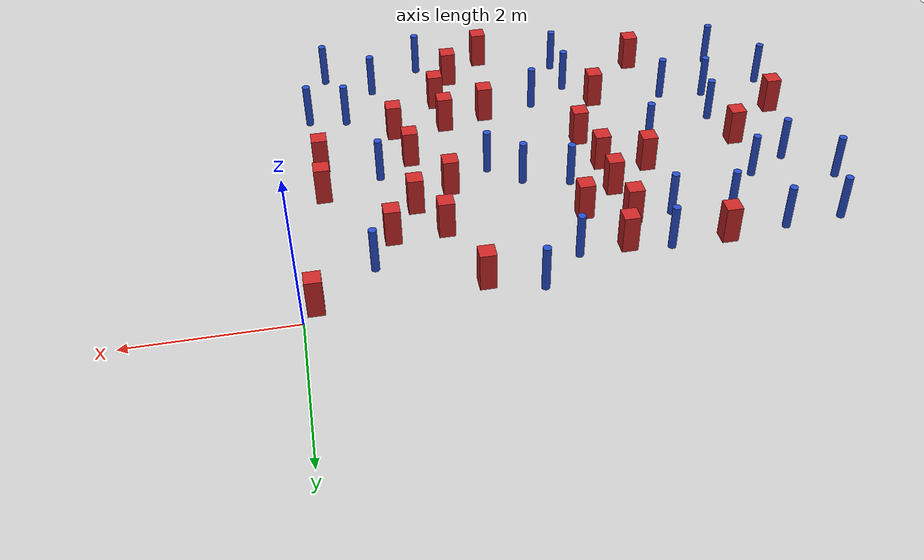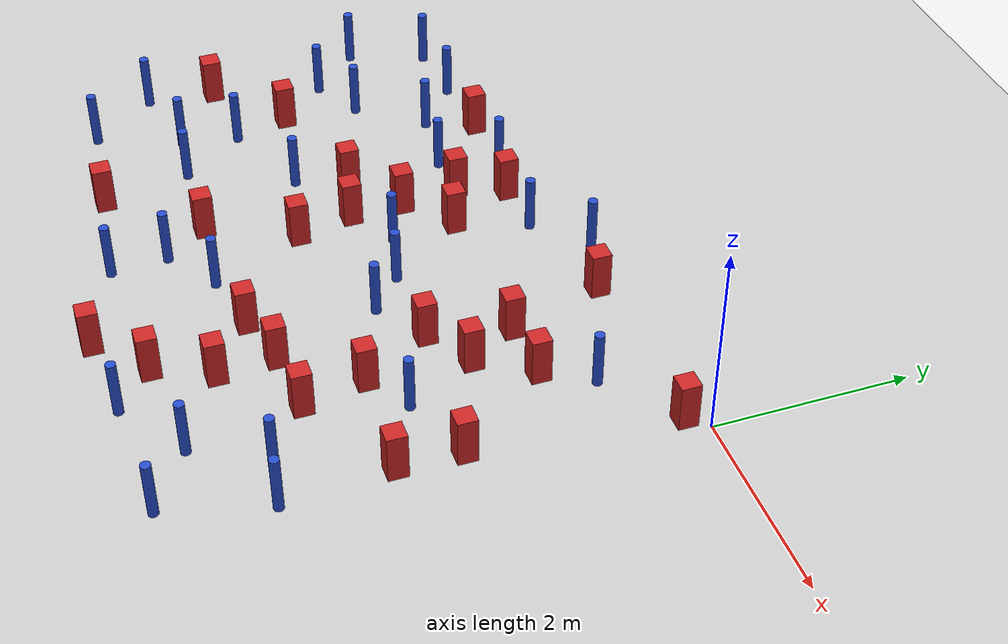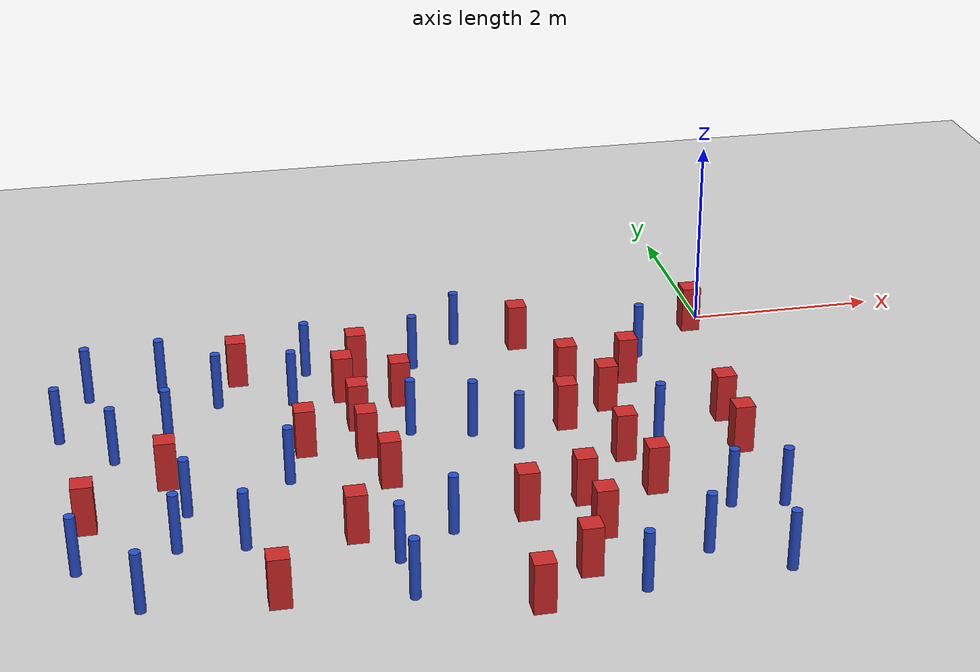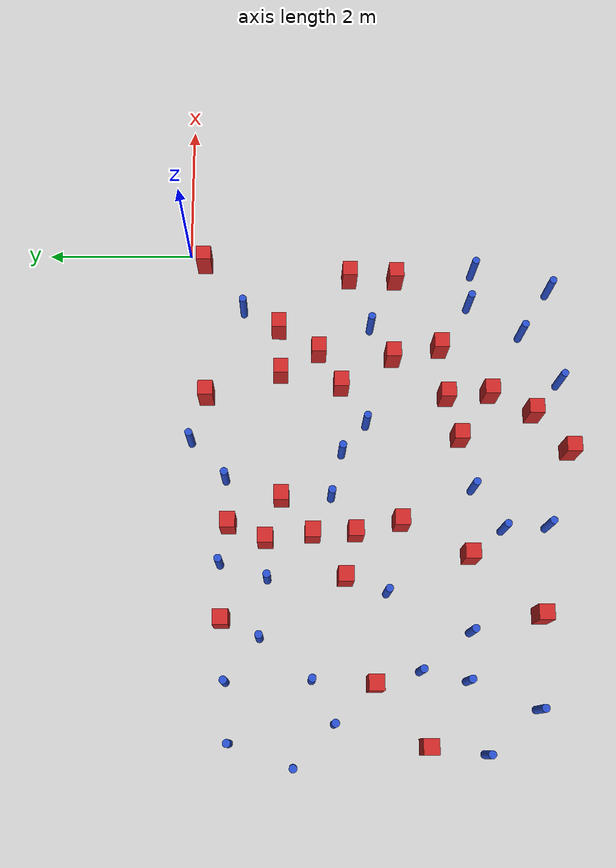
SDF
<sdf version="1.6">
 <world name="default">
  <model name="ground_plane">
   <static>1</static>
   <link name="link">
    <collision name="collision">
     <geometry><plane><normal>0 0 1</normal><size>100 100</size></plane></geometry>
     <surface><friction><ode><mu>100</mu><mu2>50</mu2></ode></friction></surface>
    </collision>
    <visual name="visual">
     <cast_shadows>0</cast_shadows>
     <geometry><plane><normal>0 0 1</normal><size>100 100</size></plane></geometry>
     <material>
      <ambient>1.0 1.0 1.0 1.0</ambient>
      <diffuse>0.8 0.8 0.8 1.0</diffuse>
      <specular>0.01 0.01 0.01 1.000000</specular>
     </material>
    </visual>
   </link>
  </model>
  <model name="pole_obstacle10">
   <static>true</static>
   <pose>-2.93135055371 -2.09699757997 -9.47619616065e-06 5.49618799737e-07 2.36310414051e-07 -1.55090534807e-07</pose>
   <link name="link">
    <pose>0 0 0.3 0 -0 0</pose>
    <inertial>
     <mass>1</mass>
     <inertia><ixx>0.145833</ixx><ixy>0</ixy><ixz>0</ixz><iyy>0.145833</iyy><iyz>0</iyz><izz>0.125</izz></inertia>
    </inertial>
    <collision name="collision">
     <geometry><cylinder><radius>0.05</radius><length>.6</length></cylinder></geometry>
    </collision>
    <visual name="visual">
     <geometry><cylinder><radius>0.05</radius><length>.6</length></cylinder></geometry>
     <material>
      <script><name>Gazebo/Blue</name><uri>file://media/materials/scripts/gazebo.material</uri></script>
     </material>
    </visual>
   </link>
  </model>
  <model name="pole_obstacle21">
   <static>true</static>
   <pose>-3.42657571255 -3.81951751165 -9.47619616065e-06 5.49618799737e-07 2.36310414051e-07 -1.55090534807e-07</pose>
   <link name="link">
    <pose>0 0 0.3 0 -0 0</pose>
    <inertial>
     <mass>1</mass>
     <inertia><ixx>0.145833</ixx><ixy>0</ixy><ixz>0</ixz><iyy>0.145833</iyy><iyz>0</iyz><izz>0.125</izz></inertia>
    </inertial>
    <collision name="collision">
     <geometry><cylinder><radius>0.05</radius><length>.6</length></cylinder></geometry>
    </collision>
    <visual name="visual">
     <geometry><cylinder><radius>0.05</radius><length>.6</length></cylinder></geometry>
     <material>
      <script><name>Gazebo/Blue</name><uri>file://media/materials/scripts/gazebo.material</uri></script>
     </material>
    </visual>
   </link>
  </model>
  <model name="pole_obstacle36">
   <static>true</static>
   <pose>-6.79070458601 -3.83877196716 -9.47619616065e-06 5.49618799738e-07 2.36310414051e-07 -1.55090534805e-07</pose>
   <link name="link">
    <pose>0 0 0.3 0 -0 0</pose>
    <inertial>
     <mass>1</mass>
     <inertia><ixx>0.145833</ixx><ixy>0</ixy><ixz>0</ixz><iyy>0.145833</iyy><iyz>0</iyz><izz>0.125</izz></inertia>
    </inertial>
    <collision name="collision">
     <geometry><cylinder><radius>0.05</radius><length>.6</length></cylinder></geometry>
    </collision>
    <visual name="visual">
     <geometry><cylinder><radius>0.05</radius><length>.6</length></cylinder></geometry>
     <material>
      <script><name>Gazebo/Blue</name><uri>file://media/materials/scripts/gazebo.material</uri></script>
     </material>
    </visual>
   </link>
  </model>
  <model name="pole_obstacle39">
   <static>true</static>
   <pose>-5.29463744672 -3.71350308579 -9.47619616065e-06 5.49618799738e-07 2.36310414051e-07 -1.55090534805e-07</pose>
   <link name="link">
    <pose>0 0 0.3 0 -0 0</pose>
    <inertial>
     <mass>1</mass>
     <inertia><ixx>0.145833</ixx><ixy>0</ixy><ixz>0</ixz><iyy>0.145833</iyy><iyz>0</iyz><izz>0.125</izz></inertia>
    </inertial>
    <collision name="collision">
     <geometry><cylinder><radius>0.05</radius><length>.6</length></cylinder></geometry>
    </collision>
    <visual name="visual">
     <geometry><cylinder><radius>0.05</radius><length>.6</length></cylinder></geometry>
     <material>
      <script><name>Gazebo/Blue</name><uri>file://media/materials/scripts/gazebo.material</uri></script>
     </material>
    </visual>
   </link>
  </model>
  <model name="pole_obstacle52">
   <static>true</static>
   <pose>-5.89471020317 -1.68037751647 -9.47619616065e-06 5.49618799738e-07 2.36310414071e-07 -1.55090534796e-07</pose>
   <link name="link">
    <pose>0 0 0.3 0 -0 0</pose>
    <inertial>
     <mass>1</mass>
     <inertia><ixx>0.145833</ixx><ixy>0</ixy><ixz>0</ixz><iyy>0.145833</iyy><iyz>0</iyz><izz>0.125</izz></inertia>
    </inertial>
    <collision name="collision">
     <geometry><cylinder><radius>0.05</radius><length>.6</length></cylinder></geometry>
    </collision>
    <visual name="visual">
     <geometry><cylinder><radius>0.05</radius><length>.6</length></cylinder></geometry>
     <material>
      <script><name>Gazebo/Blue</name><uri>file://media/materials/scripts/gazebo.material</uri></script>
     </material>
    </visual>
   </link>
  </model>
  <model name="pole_obstacle53">
   <static>true</static>
   <pose>-6.42718839206 -1.96060365254 -9.47619616065e-06 5.49618799738e-07 2.36310414079e-07 -1.55090534789e-07</pose>
   <link name="link">
    <pose>0 0 0.3 0 -0 0</pose>
    <inertial>
     <mass>1</mass>
     <inertia><ixx>0.145833</ixx><ixy>0</ixy><ixz>0</ixz><iyy>0.145833</iyy><iyz>0</iyz><izz>0.125</izz></inertia>
    </inertial>
    <collision name="collision">
     <geometry><cylinder><radius>0.05</radius><length>.6</length></cylinder></geometry>
    </collision>
    <visual name="visual">
     <geometry><cylinder><radius>0.05</radius><length>.6</length></cylinder></geometry>
     <material>
      <script><name>Gazebo/Blue</name><uri>file://media/materials/scripts/gazebo.material</uri></script>
     </material>
    </visual>
   </link>
  </model>
  <model name="square_post_obstacle44">
   <static>true</static>
   <pose>-2.13892299617 -3.5223309043 -6.11067671241e-07 -5.50515727128e-06 -8.79689657224e-07 2.37013304536e-05</pose>
   <link name="link">
    <pose>0 0 0.25 0 -0 0</pose>
    <inertial>
     <mass>100</mass>
     <inertia>
      <ixx>0.166667</ixx>
      <ixy>0</ixy>
      <ixz>0</ixz>
      <iyy>0.166667</iyy>
      <iyz>0</iyz>
      <izz>0.166667</izz>
     </inertia>
    </inertial>
    <collision name="collision"><geometry><box><size>.2 .2 .5</size></box></geometry></collision>
    <visual name="visual">
     <geometry><box><size>.2 .2 .5</size></box></geometry>
     <material>
      <script><name>Gazebo/Red</name><uri>file://media/materials/scripts/gazebo.material</uri></script>
     </material>
    </visual>
   </link>
  </model>
  <model name="square_post_obstacle45">
   <static>true</static>
   <pose>-1.99015684895 -2.09576579136 -6.11067671241e-07 -5.50515727128e-06 -8.79689657224e-07 2.37013304536e-05</pose>
   <link name="link">
    <pose>0 0 0.25 0 -0 0</pose>
    <inertial>
     <mass>100</mass>
     <inertia>
      <ixx>0.166667</ixx>
      <ixy>0</ixy>
      <ixz>0</ixz>
      <iyy>0.166667</iyy>
      <iyz>0</iyz>
      <izz>0.166667</izz>
     </inertia>
    </inertial>
    <collision name="collision"><geometry><box><size>.2 .2 .5</size></box></geometry></collision>
    <visual name="visual">
     <geometry><box><size>.2 .2 .5</size></box></geometry>
     <material>
      <script><name>Gazebo/Red</name><uri>file://media/materials/scripts/gazebo.material</uri></script>
     </material>
    </visual>
   </link>
  </model>
  <model name="square_post_obstacle52">
   <static>true</static>
   <pose>-1.5713749901 -2.80727768633 -6.11067671241e-07 -5.50515727128e-06 -8.79689657224e-07 2.37013304536e-05</pose>
   <link name="link">
    <pose>0 0 0.25 0 -0 0</pose>
    <inertial>
     <mass>100</mass>
     <inertia>
      <ixx>0.166667</ixx>
      <ixy>0</ixy>
      <ixz>0</ixz>
      <iyy>0.166667</iyy>
      <iyz>0</iyz>
      <izz>0.166667</izz>
     </inertia>
    </inertial>
    <collision name="collision"><geometry><box><size>.2 .2 .5</size></box></geometry></collision>
    <visual name="visual">
     <geometry><box><size>.2 .2 .5</size></box></geometry>
     <material>
      <script><name>Gazebo/Red</name><uri>file://media/materials/scripts/gazebo.material</uri></script>
     </material>
    </visual>
   </link>
  </model>
  <model name="square_post_obstacle56">
   <static>true</static>
   <pose>-3.86754646638 -2.8581890295 -6.11067671241e-07 -5.50515727128e-06 -8.79689657224e-07 2.37013304536e-05</pose>
   <link name="link">
    <pose>0 0 0.25 0 -0 0</pose>
    <inertial>
     <mass>100</mass>
     <inertia>
      <ixx>0.166667</ixx>
      <ixy>0</ixy>
      <ixz>0</ixz>
      <iyy>0.166667</iyy>
      <iyz>0</iyz>
      <izz>0.166667</izz>
     </inertia>
    </inertial>
    <collision name="collision"><geometry><box><size>.2 .2 .5</size></box></geometry></collision>
    <visual name="visual">
     <geometry><box><size>.2 .2 .5</size></box></geometry>
     <material>
      <script><name>Gazebo/Red</name><uri>file://media/materials/scripts/gazebo.material</uri></script>
     </material>
    </visual>
   </link>
  </model>
  <model name="square_post_obstacle60">
   <static>true</static>
   <pose>-4.59520157507 -2.12097725163 -6.11067671241e-07 -5.50515727128e-06 -8.79689657224e-07 2.37013304536e-05</pose>
   <link name="link">
    <pose>0 0 0.25 0 -0 0</pose>
    <inertial>
     <mass>100</mass>
     <inertia>
      <ixx>0.166667</ixx>
      <ixy>0</ixy>
      <ixz>0</ixz>
      <iyy>0.166667</iyy>
      <iyz>0</iyz>
      <izz>0.166667</izz>
     </inertia>
    </inertial>
    <collision name="collision"><geometry><box><size>.2 .2 .5</size></box></geometry></collision>
    <visual name="visual">
     <geometry><box><size>.2 .2 .5</size></box></geometry>
     <material>
      <script><name>Gazebo/Red</name><uri>file://media/materials/scripts/gazebo.material</uri></script>
     </material>
    </visual>
   </link>
  </model>
  <model name="pole_obstacle72">
   <static>true</static>
   <pose>-0.882571909713 -0.763972758143 -9.47619616065e-06 5.49618799737e-07 2.36310414058e-07 -1.55090534802e-07</pose>
   <link name="link">
    <pose>0 0 0.3 0 -0 0</pose>
    <inertial>
     <mass>1</mass>
     <inertia><ixx>0.145833</ixx><ixy>0</ixy><ixz>0</ixz><iyy>0.145833</iyy><iyz>0</iyz><izz>0.125</izz></inertia>
    </inertial>
    <collision name="collision">
     <geometry><cylinder><radius>0.05</radius><length>.6</length></cylinder></geometry>
    </collision>
    <visual name="visual">
     <geometry><cylinder><radius>0.05</radius><length>.6</length></cylinder></geometry>
     <material>
      <script><name>Gazebo/Blue</name><uri>file://media/materials/scripts/gazebo.material</uri></script>
     </material>
    </visual>
   </link>
  </model>
  <model name="pole_obstacle73">
   <static>true</static>
   <pose>-4.61758256845 -1.11238761481 -9.47619616065e-06 5.49618799738e-07 2.36310414071e-07 -1.55090534796e-07</pose>
   <link name="link">
    <pose>0 0 0.3 0 -0 0</pose>
    <inertial>
     <mass>1</mass>
     <inertia><ixx>0.145833</ixx><ixy>0</ixy><ixz>0</ixz><iyy>0.145833</iyy><iyz>0</iyz><izz>0.125</izz></inertia>
    </inertial>
    <collision name="collision">
     <geometry><cylinder><radius>0.05</radius><length>.6</length></cylinder></geometry>
    </collision>
    <visual name="visual">
     <geometry><cylinder><radius>0.05</radius><length>.6</length></cylinder></geometry>
     <material>
      <script><name>Gazebo/Blue</name><uri>file://media/materials/scripts/gazebo.material</uri></script>
     </material>
    </visual>
   </link>
  </model>
  <model name="pole_obstacle78">
   <static>true</static>
   <pose>-3.29295548224 -0.551746344007 -9.47619616065e-06 5.49618799738e-07 2.36310414075e-07 -1.55090534793e-07</pose>
   <link name="link">
    <pose>0 0 0.3 0 -0 0</pose>
    <inertial>
     <mass>1</mass>
     <inertia><ixx>0.145833</ixx><ixy>0</ixy><ixz>0</ixz><iyy>0.145833</iyy><iyz>0</iyz><izz>0.125</izz></inertia>
    </inertial>
    <collision name="collision">
     <geometry><cylinder><radius>0.05</radius><length>.6</length></cylinder></geometry>
    </collision>
    <visual name="visual">
     <geometry><cylinder><radius>0.05</radius><length>.6</length></cylinder></geometry>
     <material>
      <script><name>Gazebo/Blue</name><uri>file://media/materials/scripts/gazebo.material</uri></script>
     </material>
    </visual>
   </link>
  </model>
  <model name="square_post_obstacle69">
   <static>true</static>
   <pose>-2.09468409895 -4.1099241593 -6.11067671241e-07 -5.50515727128e-06 -8.79689657224e-07 2.37013304536e-05</pose>
   <link name="link">
    <pose>0 0 0.25 0 -0 0</pose>
    <inertial>
     <mass>100</mass>
     <inertia>
      <ixx>0.166667</ixx>
      <ixy>0</ixy>
      <ixz>0</ixz>
      <iyy>0.166667</iyy>
      <iyz>0</iyz>
      <izz>0.166667</izz>
     </inertia>
    </inertial>
    <collision name="collision"><geometry><box><size>.2 .2 .5</size></box></geometry></collision>
    <visual name="visual">
     <geometry><box><size>.2 .2 .5</size></box></geometry>
     <material>
      <script><name>Gazebo/Red</name><uri>file://media/materials/scripts/gazebo.material</uri></script>
     </material>
    </visual>
   </link>
  </model>
  <model name="pole_obstacle85">
   <static>true</static>
   <pose>-5.78294666168 -3.05410708037 -9.47619616065e-06 5.49618799738e-07 2.36310414051e-07 -1.55090534805e-07</pose>
   <link name="link">
    <pose>0 0 0.3 0 -0 0</pose>
    <inertial>
     <mass>1</mass>
     <inertia><ixx>0.145833</ixx><ixy>0</ixy><ixz>0</ixz><iyy>0.145833</iyy><iyz>0</iyz><izz>0.125</izz></inertia>
    </inertial>
    <collision name="collision">
     <geometry><cylinder><radius>0.05</radius><length>.6</length></cylinder></geometry>
    </collision>
    <visual name="visual">
     <geometry><cylinder><radius>0.05</radius><length>.6</length></cylinder></geometry>
     <material>
      <script><name>Gazebo/Blue</name><uri>file://media/materials/scripts/gazebo.material</uri></script>
     </material>
    </visual>
   </link>
  </model>
  <model name="pole_obstacle86">
   <static>true</static>
   <pose>-6.95241349879 -1.44487743002 -9.47619616065e-06 5.49618799738e-07 2.36310414071e-07 -1.55090534796e-07</pose>
   <link name="link">
    <pose>0 0 0.3 0 -0 0</pose>
    <inertial>
     <mass>1</mass>
     <inertia><ixx>0.145833</ixx><ixy>0</ixy><ixz>0</ixz><iyy>0.145833</iyy><iyz>0</iyz><izz>0.125</izz></inertia>
    </inertial>
    <collision name="collision">
     <geometry><cylinder><radius>0.05</radius><length>.6</length></cylinder></geometry>
    </collision>
    <visual name="visual">
     <geometry><cylinder><radius>0.05</radius><length>.6</length></cylinder></geometry>
     <material>
      <script><name>Gazebo/Blue</name><uri>file://media/materials/scripts/gazebo.material</uri></script>
     </material>
    </visual>
   </link>
  </model>
  <model name="square_post_obstacle75">
   <static>true</static>
   <pose>-0.390822762336 -2.23329659232 -6.11067671241e-07 -5.50515727128e-06 -8.79689657224e-07 2.37013304536e-05</pose>
   <link name="link">
    <pose>0 0 0.25 0 -0 0</pose>
    <inertial>
     <mass>100</mass>
     <inertia>
      <ixx>0.166667</ixx>
      <ixy>0</ixy>
      <ixz>0</ixz>
      <iyy>0.166667</iyy>
      <iyz>0</iyz>
      <izz>0.166667</izz>
     </inertia>
    </inertial>
    <collision name="collision"><geometry><box><size>.2 .2 .5</size></box></geometry></collision>
    <visual name="visual">
     <geometry><box><size>.2 .2 .5</size></box></geometry>
     <material>
      <script><name>Gazebo/Red</name><uri>file://media/materials/scripts/gazebo.material</uri></script>
     </material>
    </visual>
   </link>
  </model>
  <model name="square_post_obstacle76">
   <static>true</static>
   <pose>-0.406456759497 -2.87336540538 -6.11067671241e-07 -5.50515727128e-06 -8.79689657224e-07 2.37013304536e-05</pose>
   <link name="link">
    <pose>0 0 0.25 0 -0 0</pose>
    <inertial>
     <mass>100</mass>
     <inertia>
      <ixx>0.166667</ixx>
      <ixy>0</ixy>
      <ixz>0</ixz>
      <iyy>0.166667</iyy>
      <iyz>0</iyz>
      <izz>0.166667</izz>
     </inertia>
    </inertial>
    <collision name="collision"><geometry><box><size>.2 .2 .5</size></box></geometry></collision>
    <visual name="visual">
     <geometry><box><size>.2 .2 .5</size></box></geometry>
     <material>
      <script><name>Gazebo/Red</name><uri>file://media/materials/scripts/gazebo.material</uri></script>
     </material>
    </visual>
   </link>
  </model>
  <model name="square_post_obstacle78">
   <static>true</static>
   <pose>-4.30301377613 -3.74597563728 -6.11067671241e-07 -5.50515727128e-06 -8.79689657224e-07 2.37013304536e-05</pose>
   <link name="link">
    <pose>0 0 0.25 0 -0 0</pose>
    <inertial>
     <mass>100</mass>
     <inertia>
      <ixx>0.166667</ixx>
      <ixy>0</ixy>
      <ixz>0</ixz>
      <iyy>0.166667</iyy>
      <iyz>0</iyz>
      <izz>0.166667</izz>
     </inertia>
    </inertial>
    <collision name="collision"><geometry><box><size>.2 .2 .5</size></box></geometry></collision>
    <visual name="visual">
     <geometry><box><size>.2 .2 .5</size></box></geometry>
     <material>
      <script><name>Gazebo/Red</name><uri>file://media/materials/scripts/gazebo.material</uri></script>
     </material>
    </visual>
   </link>
  </model>
  <model name="square_post_obstacle79">
   <static>true</static>
   <pose>-3.89961947278 -0.596508629385 -6.11067671241e-07 -5.50515727128e-06 -8.79689657224e-07 2.37013304536e-05</pose>
   <link name="link">
    <pose>0 0 0.25 0 -0 0</pose>
    <inertial>
     <mass>100</mass>
     <inertia>
      <ixx>0.166667</ixx>
      <ixy>0</ixy>
      <ixz>0</ixz>
      <iyy>0.166667</iyy>
      <iyz>0</iyz>
      <izz>0.166667</izz>
     </inertia>
    </inertial>
    <collision name="collision"><geometry><box><size>.2 .2 .5</size></box></geometry></collision>
    <visual name="visual">
     <geometry><box><size>.2 .2 .5</size></box></geometry>
     <material>
      <script><name>Gazebo/Red</name><uri>file://media/materials/scripts/gazebo.material</uri></script>
     </material>
    </visual>
   </link>
  </model>
  <model name="square_post_obstacle81">
   <static>true</static>
   <pose>-2.71784077435 -3.67612180017 -6.11067671241e-07 -5.50515727128e-06 -8.79689657224e-07 2.37013304536e-05</pose>
   <link name="link">
    <pose>0 0 0.25 0 -0 0</pose>
    <inertial>
     <mass>100</mass>
     <inertia>
      <ixx>0.166667</ixx>
      <ixy>0</ixy>
      <ixz>0</ixz>
      <iyy>0.166667</iyy>
      <iyz>0</iyz>
      <izz>0.166667</izz>
     </inertia>
    </inertial>
    <collision name="collision"><geometry><box><size>.2 .2 .5</size></box></geometry></collision>
    <visual name="visual">
     <geometry><box><size>.2 .2 .5</size></box></geometry>
     <material>
      <script><name>Gazebo/Red</name><uri>file://media/materials/scripts/gazebo.material</uri></script>
     </material>
    </visual>
   </link>
  </model>
  <model name="pole_obstacle90">
   <static>true</static>
   <pose>-1.94798652679 -5.05589423316 -9.47619616065e-06 5.49618799737e-07 2.36310414061e-07 -1.550905348e-07</pose>
   <link name="link">
    <pose>0 0 0.3 0 -0 0</pose>
    <inertial>
     <mass>1</mass>
     <inertia><ixx>0.145833</ixx><ixy>0</ixy><ixz>0</ixz><iyy>0.145833</iyy><iyz>0</iyz><izz>0.125</izz></inertia>
    </inertial>
    <collision name="collision">
     <geometry><cylinder><radius>0.05</radius><length>.6</length></cylinder></geometry>
    </collision>
    <visual name="visual">
     <geometry><cylinder><radius>0.05</radius><length>.6</length></cylinder></geometry>
     <material>
      <script><name>Gazebo/Blue</name><uri>file://media/materials/scripts/gazebo.material</uri></script>
     </material>
    </visual>
   </link>
  </model>
  <model name="square_post_obstacle87">
   <static>true</static>
   <pose>-5.07825952719 -4.62966649996 -6.11067671241e-07 -5.50515727128e-06 -8.79689657224e-07 2.37013304536e-05</pose>
   <link name="link">
    <pose>0 0 0.25 0 -0 0</pose>
    <inertial>
     <mass>100</mass>
     <inertia>
      <ixx>0.166667</ixx>
      <ixy>0</ixy>
      <ixz>0</ixz>
      <iyy>0.166667</iyy>
      <iyz>0</iyz>
      <izz>0.166667</izz>
     </inertia>
    </inertial>
    <collision name="collision"><geometry><box><size>.2 .2 .5</size></box></geometry></collision>
    <visual name="visual">
     <geometry><box><size>.2 .2 .5</size></box></geometry>
     <material>
      <script><name>Gazebo/Red</name><uri>file://media/materials/scripts/gazebo.material</uri></script>
     </material>
    </visual>
   </link>
  </model>
  <model name="pole_obstacle96">
   <static>true</static>
   <pose>-0.609117077909 -4.99352976232 -9.47619616065e-06 5.49618799737e-07 2.36310414065e-07 -1.55090534796e-07</pose>
   <link name="link">
    <pose>0 0 0.3 0 -0 0</pose>
    <inertial>
     <mass>1</mass>
     <inertia><ixx>0.145833</ixx><ixy>0</ixy><ixz>0</ixz><iyy>0.145833</iyy><iyz>0</iyz><izz>0.125</izz></inertia>
    </inertial>
    <collision name="collision">
     <geometry><cylinder><radius>0.05</radius><length>.6</length></cylinder></geometry>
    </collision>
    <visual name="visual">
     <geometry><cylinder><radius>0.05</radius><length>.6</length></cylinder></geometry>
     <material>
      <script><name>Gazebo/Blue</name><uri>file://media/materials/scripts/gazebo.material</uri></script>
     </material>
    </visual>
   </link>
  </model>
  <model name="square_post_obstacle99">
   <static>true</static>
   <pose>-4.01086367355 -2.26064926312 -6.11067671241e-07 -5.50515727128e-06 -8.79689657224e-07 2.37013304536e-05</pose>
   <link name="link">
    <pose>0 0 0.25 0 -0 0</pose>
    <inertial>
     <mass>100</mass>
     <inertia>
      <ixx>0.166667</ixx>
      <ixy>0</ixy>
      <ixz>0</ixz>
      <iyy>0.166667</iyy>
      <iyz>0</iyz>
      <izz>0.166667</izz>
     </inertia>
    </inertial>
    <collision name="collision"><geometry><box><size>.2 .2 .5</size></box></geometry></collision>
    <visual name="visual">
     <geometry><box><size>.2 .2 .5</size></box></geometry>
     <material>
      <script><name>Gazebo/Red</name><uri>file://media/materials/scripts/gazebo.material</uri></script>
     </material>
    </visual>
   </link>
  </model>
  <model name="pole_obstacle106">
   <static>true</static>
   <pose>-1.13756666847 -2.51263607211 -9.47619616065e-06 5.49618799737e-07 2.36310414062e-07 -1.55090534798e-07</pose>
   <link name="link">
    <pose>0 0 0.3 0 -0 0</pose>
    <inertial>
     <mass>1</mass>
     <inertia><ixx>0.145833</ixx><ixy>0</ixy><ixz>0</ixz><iyy>0.145833</iyy><iyz>0</iyz><izz>0.125</izz></inertia>
    </inertial>
    <collision name="collision">
     <geometry><cylinder><radius>0.05</radius><length>.6</length></cylinder></geometry>
    </collision>
    <visual name="visual">
     <geometry><cylinder><radius>0.05</radius><length>.6</length></cylinder></geometry>
     <material>
      <script><name>Gazebo/Blue</name><uri>file://media/materials/scripts/gazebo.material</uri></script>
     </material>
    </visual>
   </link>
  </model>
  <model name="pole_obstacle108">
   <static>true</static>
   <pose>-5.90482371553 -3.64511666003 -9.47619616065e-06 5.49618799738e-07 2.36310414051e-07 -1.55090534805e-07</pose>
   <link name="link">
    <pose>0 0 0.3 0 -0 0</pose>
    <inertial>
     <mass>1</mass>
     <inertia><ixx>0.145833</ixx><ixy>0</ixy><ixz>0</ixz><iyy>0.145833</iyy><iyz>0</iyz><izz>0.125</izz></inertia>
    </inertial>
    <collision name="collision">
     <geometry><cylinder><radius>0.05</radius><length>.6</length></cylinder></geometry>
    </collision>
    <visual name="visual">
     <geometry><cylinder><radius>0.05</radius><length>.6</length></cylinder></geometry>
     <material>
      <script><name>Gazebo/Blue</name><uri>file://media/materials/scripts/gazebo.material</uri></script>
     </material>
    </visual>
   </link>
  </model>
  <model name="pole_obstacle113">
   <static>true</static>
   <pose>-5.36995564219 -1.01738947168 -9.47619616065e-06 5.49618799737e-07 2.36310414067e-07 -1.55090534797e-07</pose>
   <link name="link">
    <pose>0 0 0.3 0 -0 0</pose>
    <inertial>
     <mass>1</mass>
     <inertia><ixx>0.145833</ixx><ixy>0</ixy><ixz>0</ixz><iyy>0.145833</iyy><iyz>0</iyz><izz>0.125</izz></inertia>
    </inertial>
    <collision name="collision">
     <geometry><cylinder><radius>0.05</radius><length>.6</length></cylinder></geometry>
    </collision>
    <visual name="visual">
     <geometry><cylinder><radius>0.05</radius><length>.6</length></cylinder></geometry>
     <material>
      <script><name>Gazebo/Blue</name><uri>file://media/materials/scripts/gazebo.material</uri></script>
     </material>
    </visual>
   </link>
  </model>
  <model name="pole_obstacle120">
   <static>true</static>
   <pose>-3.93224170226 -4.77405229319 -9.47619616065e-06 5.49618799738e-07 2.3631041406e-07 -1.55090534801e-07</pose>
   <link name="link">
    <pose>0 0 0.3 0 -0 0</pose>
    <inertial>
     <mass>1</mass>
     <inertia><ixx>0.145833</ixx><ixy>0</ixy><ixz>0</ixz><iyy>0.145833</iyy><iyz>0</iyz><izz>0.125</izz></inertia>
    </inertial>
    <collision name="collision">
     <geometry><cylinder><radius>0.05</radius><length>.6</length></cylinder></geometry>
    </collision>
    <visual name="visual">
     <geometry><cylinder><radius>0.05</radius><length>.6</length></cylinder></geometry>
     <material>
      <script><name>Gazebo/Blue</name><uri>file://media/materials/scripts/gazebo.material</uri></script>
     </material>
    </visual>
   </link>
  </model>
  <model name="square_post_obstacle124">
   <static>true</static>
   <pose>-0.153683717888 -0.204794614005 -6.11067671241e-07 -5.50515727128e-06 -8.79689657224e-07 2.37013304536e-05</pose>
   <link name="link">
    <pose>0 0 0.25 0 -0 0</pose>
    <inertial>
     <mass>100</mass>
     <inertia>
      <ixx>0.166667</ixx>
      <ixy>0</ixy>
      <ixz>0</ixz>
      <iyy>0.166667</iyy>
      <iyz>0</iyz>
      <izz>0.166667</izz>
     </inertia>
    </inertial>
    <collision name="collision"><geometry><box><size>.2 .2 .5</size></box></geometry></collision>
    <visual name="visual">
     <geometry><box><size>.2 .2 .5</size></box></geometry>
     <material>
      <script><name>Gazebo/Red</name><uri>file://media/materials/scripts/gazebo.material</uri></script>
     </material>
    </visual>
   </link>
  </model>
  <model name="pole_obstacle133">
   <static>true</static>
   <pose>-3.52989536924 -1.95069262301 -9.47619616065e-06 5.49618799737e-07 2.3631041407e-07 -1.55090534794e-07</pose>
   <link name="link">
    <pose>0 0 0.3 0 -0 0</pose>
    <inertial>
     <mass>1</mass>
     <inertia><ixx>0.145833</ixx><ixy>0</ixy><ixz>0</ixz><iyy>0.145833</iyy><iyz>0</iyz><izz>0.125</izz></inertia>
    </inertial>
    <collision name="collision">
     <geometry><cylinder><radius>0.05</radius><length>.6</length></cylinder></geometry>
    </collision>
    <visual name="visual">
     <geometry><cylinder><radius>0.05</radius><length>.6</length></cylinder></geometry>
     <material>
      <script><name>Gazebo/Blue</name><uri>file://media/materials/scripts/gazebo.material</uri></script>
     </material>
    </visual>
   </link>
  </model>
  <model name="pole_obstacle137">
   <static>true</static>
   <pose>-0.81654127979 -3.87578462385 -9.47619616065e-06 5.49618799737e-07 2.36310414066e-07 -1.55090534797e-07</pose>
   <link name="link">
    <pose>0 0 0.3 0 -0 0</pose>
    <inertial>
     <mass>1</mass>
     <inertia><ixx>0.145833</ixx><ixy>0</ixy><ixz>0</ixz><iyy>0.145833</iyy><iyz>0</iyz><izz>0.125</izz></inertia>
    </inertial>
    <collision name="collision">
     <geometry><cylinder><radius>0.05</radius><length>.6</length></cylinder></geometry>
    </collision>
    <visual name="visual">
     <geometry><cylinder><radius>0.05</radius><length>.6</length></cylinder></geometry>
     <material>
      <script><name>Gazebo/Blue</name><uri>file://media/materials/scripts/gazebo.material</uri></script>
     </material>
    </visual>
   </link>
  </model>
  <model name="square_post_obstacle134">
   <static>true</static>
   <pose>-1.43622710108 -3.45709002649 -6.11067671241e-07 -5.50515727128e-06 -8.79689657224e-07 2.37013304536e-05</pose>
   <link name="link">
    <pose>0 0 0.25 0 -0 0</pose>
    <inertial>
     <mass>100</mass>
     <inertia>
      <ixx>0.166667</ixx>
      <ixy>0</ixy>
      <ixz>0</ixz>
      <iyy>0.166667</iyy>
      <iyz>0</iyz>
      <izz>0.166667</izz>
     </inertia>
    </inertial>
    <collision name="collision"><geometry><box><size>.2 .2 .5</size></box></geometry></collision>
    <visual name="visual">
     <geometry><box><size>.2 .2 .5</size></box></geometry>
     <material>
      <script><name>Gazebo/Red</name><uri>file://media/materials/scripts/gazebo.material</uri></script>
     </material>
    </visual>
   </link>
  </model>
  <model name="square_post_obstacle138">
   <static>true</static>
   <pose>-5.13938223901 -0.529241005969 -6.11067671241e-07 -5.50515727128e-06 -8.79689657224e-07 2.37013304536e-05</pose>
   <link name="link">
    <pose>0 0 0.25 0 -0 0</pose>
    <inertial>
     <mass>100</mass>
     <inertia>
      <ixx>0.166667</ixx>
      <ixy>0</ixy>
      <ixz>0</ixz>
      <iyy>0.166667</iyy>
      <iyz>0</iyz>
      <izz>0.166667</izz>
     </inertia>
    </inertial>
    <collision name="collision"><geometry><box><size>.2 .2 .5</size></box></geometry></collision>
    <visual name="visual">
     <geometry><box><size>.2 .2 .5</size></box></geometry>
     <material>
      <script><name>Gazebo/Red</name><uri>file://media/materials/scripts/gazebo.material</uri></script>
     </material>
    </visual>
   </link>
  </model>
  <model name="square_post_obstacle140">
   <static>true</static>
   <pose>-2.11838492199 -0.271967968185 -6.11067671241e-07 -5.50515727128e-06 -8.79689657224e-07 2.37013304536e-05</pose>
   <link name="link">
    <pose>0 0 0.25 0 -0 0</pose>
    <inertial>
     <mass>100</mass>
     <inertia>
      <ixx>0.166667</ixx>
      <ixy>0</ixy>
      <ixz>0</ixz>
      <iyy>0.166667</iyy>
      <iyz>0</iyz>
      <izz>0.166667</izz>
     </inertia>
    </inertial>
    <collision name="collision"><geometry><box><size>.2 .2 .5</size></box></geometry></collision>
    <visual name="visual">
     <geometry><box><size>.2 .2 .5</size></box></geometry>
     <material>
      <script><name>Gazebo/Red</name><uri>file://media/materials/scripts/gazebo.material</uri></script>
     </material>
    </visual>
   </link>
  </model>
  <model name="pole_obstacle149">
   <static>true</static>
   <pose>-4.42109830066 -0.492200051372 -9.47619616065e-06 5.49618799737e-07 2.36310414073e-07 -1.55090534793e-07</pose>
   <link name="link">
    <pose>0 0 0.3 0 -0 0</pose>
    <inertial>
     <mass>1</mass>
     <inertia><ixx>0.145833</ixx><ixy>0</ixy><ixz>0</ixz><iyy>0.145833</iyy><iyz>0</iyz><izz>0.125</izz></inertia>
    </inertial>
    <collision name="collision">
     <geometry><cylinder><radius>0.05</radius><length>.6</length></cylinder></geometry>
    </collision>
    <visual name="visual">
     <geometry><cylinder><radius>0.05</radius><length>.6</length></cylinder></geometry>
     <material>
      <script><name>Gazebo/Blue</name><uri>file://media/materials/scripts/gazebo.material</uri></script>
     </material>
    </visual>
   </link>
  </model>
  <model name="square_post_obstacle143">
   <static>true</static>
   <pose>-6.70114803122 -3.1239104308 -6.11067671241e-07 -5.50515727128e-06 -8.79689657224e-07 2.37013304536e-05</pose>
   <link name="link">
    <pose>0 0 0.25 0 -0 0</pose>
    <inertial>
     <mass>100</mass>
     <inertia>
      <ixx>0.166667</ixx>
      <ixy>0</ixy>
      <ixz>0</ixz>
      <iyy>0.166667</iyy>
      <iyz>0</iyz>
      <izz>0.166667</izz>
     </inertia>
    </inertial>
    <collision name="collision"><geometry><box><size>.2 .2 .5</size></box></geometry></collision>
    <visual name="visual">
     <geometry><box><size>.2 .2 .5</size></box></geometry>
     <material>
      <script><name>Gazebo/Red</name><uri>file://media/materials/scripts/gazebo.material</uri></script>
     </material>
    </visual>
   </link>
  </model>
  <model name="pole_obstacle151">
   <static>true</static>
   <pose>-2.52845067783 -2.42762072618 -9.47619616065e-06 5.49618799737e-07 2.36310414051e-07 -1.55090534807e-07</pose>
   <link name="link">
    <pose>0 0 0.3 0 -0 0</pose>
    <inertial>
     <mass>1</mass>
     <inertia><ixx>0.145833</ixx><ixy>0</ixy><ixz>0</ixz><iyy>0.145833</iyy><iyz>0</iyz><izz>0.125</izz></inertia>
    </inertial>
    <collision name="collision">
     <geometry><cylinder><radius>0.05</radius><length>.6</length></cylinder></geometry>
    </collision>
    <visual name="visual">
     <geometry><cylinder><radius>0.05</radius><length>.6</length></cylinder></geometry>
     <material>
      <script><name>Gazebo/Blue</name><uri>file://media/materials/scripts/gazebo.material</uri></script>
     </material>
    </visual>
   </link>
  </model>
  <model name="square_post_obstacle147">
   <static>true</static>
   <pose>-1.80527554533 -1.27958814051 -6.11067671241e-07 -5.50515727128e-06 -8.79689657224e-07 2.37013304536e-05</pose>
   <link name="link">
    <pose>0 0 0.25 0 -0 0</pose>
    <inertial>
     <mass>100</mass>
     <inertia>
      <ixx>0.166667</ixx>
      <ixy>0</ixy>
      <ixz>0</ixz>
      <iyy>0.166667</iyy>
      <iyz>0</iyz>
      <izz>0.166667</izz>
     </inertia>
    </inertial>
    <collision name="collision"><geometry><box><size>.2 .2 .5</size></box></geometry></collision>
    <visual name="visual">
     <geometry><box><size>.2 .2 .5</size></box></geometry>
     <material>
      <script><name>Gazebo/Red</name><uri>file://media/materials/scripts/gazebo.material</uri></script>
     </material>
    </visual>
   </link>
  </model>
  <model name="square_post_obstacle148">
   <static>true</static>
   <pose>-3.54283065994 -1.29177906688 -6.11067671241e-07 -5.50515727128e-06 -8.79689657224e-07 2.37013304536e-05</pose>
   <link name="link">
    <pose>0 0 0.25 0 -0 0</pose>
    <inertial>
     <mass>100</mass>
     <inertia>
      <ixx>0.166667</ixx>
      <ixy>0</ixy>
      <ixz>0</ixz>
      <iyy>0.166667</iyy>
      <iyz>0</iyz>
      <izz>0.166667</izz>
     </inertia>
    </inertial>
    <collision name="collision"><geometry><box><size>.2 .2 .5</size></box></geometry></collision>
    <visual name="visual">
     <geometry><box><size>.2 .2 .5</size></box></geometry>
     <material>
      <script><name>Gazebo/Red</name><uri>file://media/materials/scripts/gazebo.material</uri></script>
     </material>
    </visual>
   </link>
  </model>
  <model name="square_post_obstacle150">
   <static>true</static>
   <pose>-1.15036265776 -1.25301027752 -6.11067671241e-07 -5.50515727128e-06 -8.79689657224e-07 2.37013304536e-05</pose>
   <link name="link">
    <pose>0 0 0.25 0 -0 0</pose>
    <inertial>
     <mass>100</mass>
     <inertia>
      <ixx>0.166667</ixx>
      <ixy>0</ixy>
      <ixz>0</ixz>
      <iyy>0.166667</iyy>
      <iyz>0</iyz>
      <izz>0.166667</izz>
     </inertia>
    </inertial>
    <collision name="collision"><geometry><box><size>.2 .2 .5</size></box></geometry></collision>
    <visual name="visual">
     <geometry><box><size>.2 .2 .5</size></box></geometry>
     <material>
      <script><name>Gazebo/Red</name><uri>file://media/materials/scripts/gazebo.material</uri></script>
     </material>
    </visual>
   </link>
  </model>
  <model name="pole_obstacle155">
   <static>true</static>
   <pose>-4.79668718023 -2.65654504511 -9.47619616065e-06 5.49618799738e-07 2.36310414051e-07 -1.55090534805e-07</pose>
   <link name="link">
    <pose>0 0 0.3 0 -0 0</pose>
    <inertial>
     <mass>1</mass>
     <inertia><ixx>0.145833</ixx><ixy>0</ixy><ixz>0</ixz><iyy>0.145833</iyy><iyz>0</iyz><izz>0.125</izz></inertia>
    </inertial>
    <collision name="collision">
     <geometry><cylinder><radius>0.05</radius><length>.6</length></cylinder></geometry>
    </collision>
    <visual name="visual">
     <geometry><cylinder><radius>0.05</radius><length>.6</length></cylinder></geometry>
     <material>
      <script><name>Gazebo/Blue</name><uri>file://media/materials/scripts/gazebo.material</uri></script>
     </material>
    </visual>
   </link>
  </model>
  <model name="square_post_obstacle157">
   <static>true</static>
   <pose>-2.8937641586 -5.14037594077 -6.11067671241e-07 -5.50515727128e-06 -8.79689657224e-07 2.37013304536e-05</pose>
   <link name="link">
    <pose>0 0 0.25 0 -0 0</pose>
    <inertial>
     <mass>100</mass>
     <inertia>
      <ixx>0.166667</ixx>
      <ixy>0</ixy>
      <ixz>0</ixz>
      <iyy>0.166667</iyy>
      <iyz>0</iyz>
      <izz>0.166667</izz>
     </inertia>
    </inertial>
    <collision name="collision"><geometry><box><size>.2 .2 .5</size></box></geometry></collision>
    <visual name="visual">
     <geometry><box><size>.2 .2 .5</size></box></geometry>
     <material>
      <script><name>Gazebo/Red</name><uri>file://media/materials/scripts/gazebo.material</uri></script>
     </material>
    </visual>
   </link>
  </model>
  <model name="pole_obstacle166">
   <static>true</static>
   <pose>-3.97213198247 -4.19061378913 -9.47619616065e-06 5.49618799737e-07 2.36310414072e-07 -1.55090534795e-07</pose>
   <link name="link">
    <pose>0 0 0.3 0 -0 0</pose>
    <inertial>
     <mass>1</mass>
     <inertia><ixx>0.145833</ixx><ixy>0</ixy><ixz>0</ixz><iyy>0.145833</iyy><iyz>0</iyz><izz>0.125</izz></inertia>
    </inertial>
    <collision name="collision">
     <geometry><cylinder><radius>0.05</radius><length>.6</length></cylinder></geometry>
    </collision>
    <visual name="visual">
     <geometry><cylinder><radius>0.05</radius><length>.6</length></cylinder></geometry>
     <material>
      <script><name>Gazebo/Blue</name><uri>file://media/materials/scripts/gazebo.material</uri></script>
     </material>
    </visual>
   </link>
  </model>
  <model name="pole_obstacle172">
   <static>true</static>
   <pose>-2.76716996002 -0.0787259437785 -9.47619616065e-06 5.49618799737e-07 2.36310414066e-07 -1.55090534798e-07</pose>
   <link name="link">
    <pose>0 0 0.3 0 -0 0</pose>
    <inertial>
     <mass>1</mass>
     <inertia><ixx>0.145833</ixx><ixy>0</ixy><ixz>0</ixz><iyy>0.145833</iyy><iyz>0</iyz><izz>0.125</izz></inertia>
    </inertial>
    <collision name="collision">
     <geometry><cylinder><radius>0.05</radius><length>.6</length></cylinder></geometry>
    </collision>
    <visual name="visual">
     <geometry><cylinder><radius>0.05</radius><length>.6</length></cylinder></geometry>
     <material>
      <script><name>Gazebo/Blue</name><uri>file://media/materials/scripts/gazebo.material</uri></script>
     </material>
    </visual>
   </link>
  </model>
  <model name="square_post_obstacle174">
   <static>true</static>
   <pose>-4.10179924981 -1.08625443053 -6.11067671241e-07 -5.50515727128e-06 -8.79689657224e-07 2.37013304536e-05</pose>
   <link name="link">
    <pose>0 0 0.25 0 -0 0</pose>
    <inertial>
     <mass>100</mass>
     <inertia>
      <ixx>0.166667</ixx>
      <ixy>0</ixy>
      <ixz>0</ixz>
      <iyy>0.166667</iyy>
      <iyz>0</iyz>
      <izz>0.166667</izz>
     </inertia>
    </inertial>
    <collision name="collision"><geometry><box><size>.2 .2 .5</size></box></geometry></collision>
    <visual name="visual">
     <geometry><box><size>.2 .2 .5</size></box></geometry>
     <material>
      <script><name>Gazebo/Red</name><uri>file://media/materials/scripts/gazebo.material</uri></script>
     </material>
    </visual>
   </link>
  </model>
  <model name="pole_obstacle177">
   <static>true</static>
   <pose>-6.66116895114 -0.641023270877 -9.47619616065e-06 5.49618799737e-07 2.36310414061e-07 -1.550905348e-07</pose>
   <link name="link">
    <pose>0 0 0.3 0 -0 0</pose>
    <inertial>
     <mass>1</mass>
     <inertia><ixx>0.145833</ixx><ixy>0</ixy><ixz>0</ixz><iyy>0.145833</iyy><iyz>0</iyz><izz>0.125</izz></inertia>
    </inertial>
    <collision name="collision">
     <geometry><cylinder><radius>0.05</radius><length>.6</length></cylinder></geometry>
    </collision>
    <visual name="visual">
     <geometry><cylinder><radius>0.05</radius><length>.6</length></cylinder></geometry>
     <material>
      <script><name>Gazebo/Blue</name><uri>file://media/materials/scripts/gazebo.material</uri></script>
     </material>
    </visual>
   </link>
  </model>
  <model name="pole_obstacle178">
   <static>true</static>
   <pose>-6.25161566388 -4.51537701157 -9.47619616065e-06 5.49618799737e-07 2.36310414037e-07 -1.55090534814e-07</pose>
   <link name="link">
    <pose>0 0 0.3 0 -0 0</pose>
    <inertial>
     <mass>1</mass>
     <inertia><ixx>0.145833</ixx><ixy>0</ixy><ixz>0</ixz><iyy>0.145833</iyy><iyz>0</iyz><izz>0.125</izz></inertia>
    </inertial>
    <collision name="collision">
     <geometry><cylinder><radius>0.05</radius><length>.6</length></cylinder></geometry>
    </collision>
    <visual name="visual">
     <geometry><cylinder><radius>0.05</radius><length>.6</length></cylinder></geometry>
     <material>
      <script><name>Gazebo/Blue</name><uri>file://media/materials/scripts/gazebo.material</uri></script>
     </material>
    </visual>
   </link>
  </model>
  <model name="square_post_obstacle175">
   <static>true</static>
   <pose>-2.36832954889 -4.68269104269 -6.11067671241e-07 -5.50515727128e-06 -8.79689657224e-07 2.37013304536e-05</pose>
   <link name="link">
    <pose>0 0 0.25 0 -0 0</pose>
    <inertial>
     <mass>100</mass>
     <inertia>
      <ixx>0.166667</ixx>
      <ixy>0</ixy>
      <ixz>0</ixz>
      <iyy>0.166667</iyy>
      <iyz>0</iyz>
      <izz>0.166667</izz>
     </inertia>
    </inertial>
    <collision name="collision"><geometry><box><size>.2 .2 .5</size></box></geometry></collision>
    <visual name="visual">
     <geometry><box><size>.2 .2 .5</size></box></geometry>
     <material>
      <script><name>Gazebo/Red</name><uri>file://media/materials/scripts/gazebo.material</uri></script>
     </material>
    </visual>
   </link>
  </model>
  <model name="square_post_obstacle177">
   <static>true</static>
   <pose>-5.94001782774 -2.47742578053 -6.11067671241e-07 -5.50515727128e-06 -8.79689657224e-07 2.37013304536e-05</pose>
   <link name="link">
    <pose>0 0 0.25 0 -0 0</pose>
    <inertial>
     <mass>100</mass>
     <inertia>
      <ixx>0.166667</ixx>
      <ixy>0</ixy>
      <ixz>0</ixz>
      <iyy>0.166667</iyy>
      <iyz>0</iyz>
      <izz>0.166667</izz>
     </inertia>
    </inertial>
    <collision name="collision"><geometry><box><size>.2 .2 .5</size></box></geometry></collision>
    <visual name="visual">
     <geometry><box><size>.2 .2 .5</size></box></geometry>
     <material>
      <script><name>Gazebo/Red</name><uri>file://media/materials/scripts/gazebo.material</uri></script>
     </material>
    </visual>
   </link>
  </model>
  <model name="square_post_obstacle194">
   <static>true</static>
   <pose>-1.50152835763 -1.79625450144 -6.11067671241e-07 -5.50515727128e-06 -8.79689657224e-07 2.37013304536e-05</pose>
   <link name="link">
    <pose>0 0 0.25 0 -0 0</pose>
    <inertial>
     <mass>100</mass>
     <inertia>
      <ixx>0.166667</ixx>
      <ixy>0</ixy>
      <ixz>0</ixz>
      <iyy>0.166667</iyy>
      <iyz>0</iyz>
      <izz>0.166667</izz>
     </inertia>
    </inertial>
    <collision name="collision"><geometry><box><size>.2 .2 .5</size></box></geometry></collision>
    <visual name="visual">
     <geometry><box><size>.2 .2 .5</size></box></geometry>
     <material>
      <script><name>Gazebo/Red</name><uri>file://media/materials/scripts/gazebo.material</uri></script>
     </material>
    </visual>
   </link>
  </model>
  <model name="square_post_obstacle206">
   <static>true</static>
   <pose>-4.02674120468 -1.69991997415 -6.11067671241e-07 -5.50515727128e-06 -8.79689657224e-07 2.37013304536e-05</pose>
   <link name="link">
    <pose>0 0 0.25 0 -0 0</pose>
    <inertial>
     <mass>100</mass>
     <inertia>
      <ixx>0.166667</ixx>
      <ixy>0</ixy>
      <ixz>0</ixz>
      <iyy>0.166667</iyy>
      <iyz>0</iyz>
      <izz>0.166667</izz>
     </inertia>
    </inertial>
    <collision name="collision"><geometry><box><size>.2 .2 .5</size></box></geometry></collision>
    <visual name="visual">
     <geometry><box><size>.2 .2 .5</size></box></geometry>
     <material>
      <script><name>Gazebo/Red</name><uri>file://media/materials/scripts/gazebo.material</uri></script>
     </material>
    </visual>
   </link>
  </model>
  <model name="pole_obstacle195">
   <static>true</static>
   <pose>-0.320325283053 -3.95485769541 -9.47619616065e-06 5.49618799737e-07 2.36310414066e-07 -1.55090534797e-07</pose>
   <link name="link">
    <pose>0 0 0.3 0 -0 0</pose>
    <inertial>
     <mass>1</mass>
     <inertia><ixx>0.145833</ixx><ixy>0</ixy><ixz>0</ixz><iyy>0.145833</iyy><iyz>0</iyz><izz>0.125</izz></inertia>
    </inertial>
    <collision name="collision">
     <geometry><cylinder><radius>0.05</radius><length>.6</length></cylinder></geometry>
    </collision>
    <visual name="visual">
     <geometry><cylinder><radius>0.05</radius><length>.6</length></cylinder></geometry>
     <material>
      <script><name>Gazebo/Blue</name><uri>file://media/materials/scripts/gazebo.material</uri></script>
     </material>
    </visual>
   </link>
  </model>
  <model name="pole_obstacle197">
   <static>true</static>
   <pose>-1.24737353687 -4.57816750664 -9.47619616065e-06 5.49618799737e-07 2.36310414061e-07 -1.550905348e-07</pose>
   <link name="link">
    <pose>0 0 0.3 0 -0 0</pose>
    <inertial>
     <mass>1</mass>
     <inertia><ixx>0.145833</ixx><ixy>0</ixy><ixz>0</ixz><iyy>0.145833</iyy><iyz>0</iyz><izz>0.125</izz></inertia>
    </inertial>
    <collision name="collision">
     <geometry><cylinder><radius>0.05</radius><length>.6</length></cylinder></geometry>
    </collision>
    <visual name="visual">
     <geometry><cylinder><radius>0.05</radius><length>.6</length></cylinder></geometry>
     <material>
      <script><name>Gazebo/Blue</name><uri>file://media/materials/scripts/gazebo.material</uri></script>
     </material>
    </visual>
   </link>
  </model>
  <model name="pole_obstacle206">
   <static>true</static>
   <pose>-5.91832082331 -0.5873838894 -9.47619616065e-06 5.49618799737e-07 2.36310414061e-07 -1.550905348e-07</pose>
   <link name="link">
    <pose>0 0 0.3 0 -0 0</pose>
    <inertial>
     <mass>1</mass>
     <inertia><ixx>0.145833</ixx><ixy>0</ixy><ixz>0</ixz><iyy>0.145833</iyy><iyz>0</iyz><izz>0.125</izz></inertia>
    </inertial>
    <collision name="collision">
     <geometry><cylinder><radius>0.05</radius><length>.6</length></cylinder></geometry>
    </collision>
    <visual name="visual">
     <geometry><cylinder><radius>0.05</radius><length>.6</length></cylinder></geometry>
     <material>
      <script><name>Gazebo/Blue</name><uri>file://media/materials/scripts/gazebo.material</uri></script>
     </material>
    </visual>
   </link>
  </model>
 </world>
</sdf>
